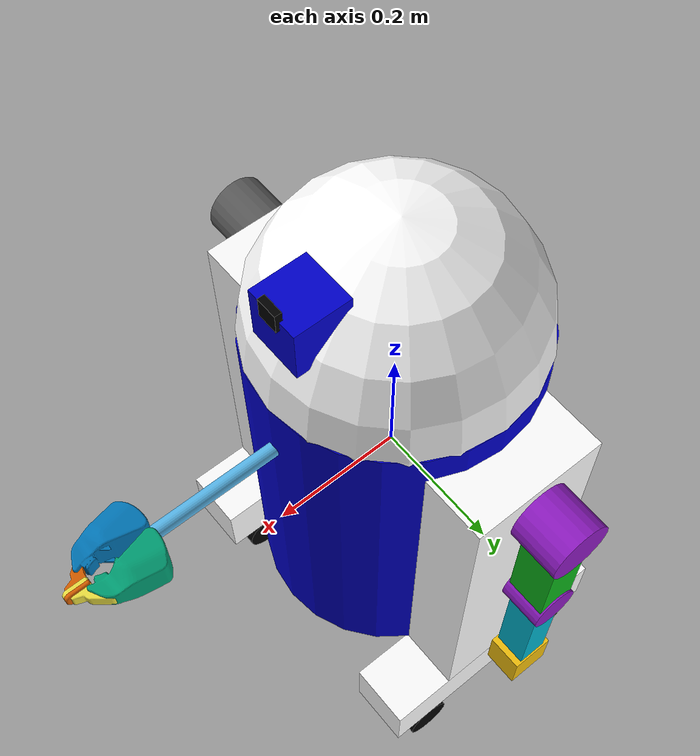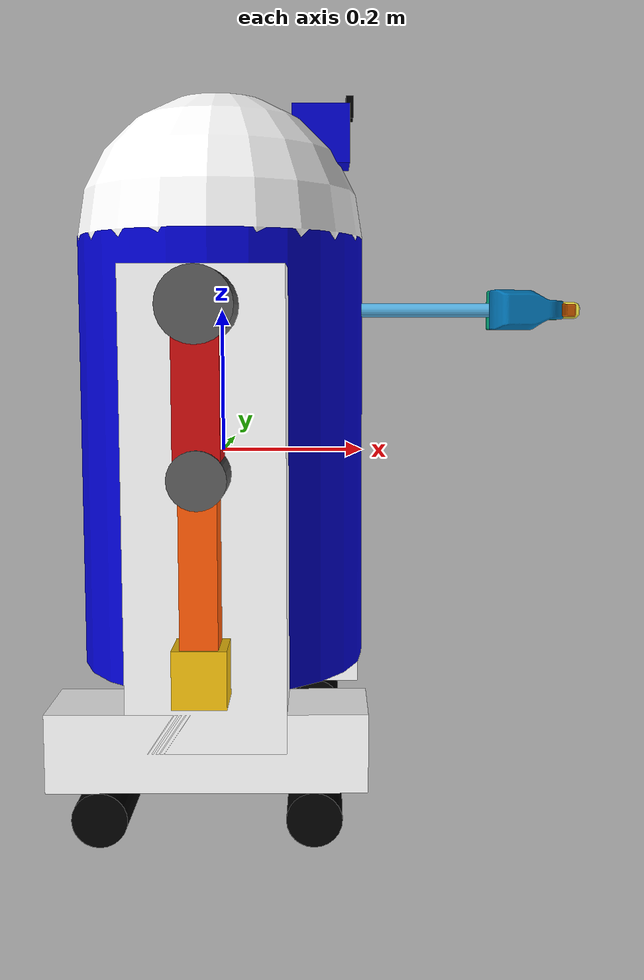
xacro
<?xml version="1.0"?>
<robot name="macroed" xmlns:xacro="http://ros.org/wiki/xacro">

  <xacro:property name="width" value="0.2" />
  <xacro:property name="leglen" value="0.6" />
  <xacro:property name="polelen" value="0.2" />
  <xacro:property name="bodylen" value="0.6" />
  <xacro:property name="baselen" value="0.4" />
  <xacro:property name="wheeldiam" value="0.07" />
  <!--
    박스의 관성 모멘트 계산

    x, y, z : 박스 크기
    mass    : 질량

    Ixx = 1/12 * m * (y² + z²)
    Iyy = 1/12 * m * (x² + z²)
    Izz = 1/12 * m * (x² + y²)
  -->
  <xacro:macro name="box_inertial"
               params="mass x y z origin_xyz:='0 0 0' origin_rpy:='0 0 0'">
    <inertial>
      <origin xyz="${origin_xyz}" rpy="${origin_rpy}"/>

      <mass value="${mass}"/>

      <inertia
        ixx="${mass * (y*y + z*z) / 12.0}"
        ixy="0.0"
        ixz="0.0"
        iyy="${mass * (x*x + z*z) / 12.0}"
        iyz="0.0"
        izz="${mass * (x*x + y*y) / 12.0}"/>
    </inertial>
  </xacro:macro>
  <material name="blue">
    <color rgba="0 0 0.8 1"/>
  </material>

  <material name="black">
    <color rgba="0 0 0 1"/>
  </material>

  <material name="white">
    <color rgba="1 1 1 1"/>
  </material>

  <material name="red">
    <color rgba="0.8 0.05 0.05 1"/>
  </material>

  <material name="green">
    <color rgba="0.05 0.7 0.1 1"/>
  </material>

  <material name="yellow">
    <color rgba="0.95 0.75 0.05 1"/>
  </material>

  <material name="orange">
    <color rgba="1.0 0.35 0.02 1"/>
  </material>

  <material name="purple">
    <color rgba="0.55 0.1 0.75 1"/>
  </material>

  <material name="cyan">
    <color rgba="0.0 0.7 0.8 1"/>
  </material>

  <material name="gray">
    <color rgba="0.35 0.35 0.35 1"/>
  </material>

  <xacro:macro name="default_inertial" params="mass">
    <inertial>
      <mass value="${mass}" />
      <inertia ixx="1e-3" ixy="0.0" ixz="0.0" iyy="1e-3" iyz="0.0" izz="1e-3" />
    </inertial>
  </xacro:macro>

  <link name="base_link">
    <visual>
      <geometry>
        <cylinder radius="${width}" length="${bodylen}"/>
      </geometry>
      <material name="blue"/>
    </visual>
    <collision>
      <geometry>
        <cylinder radius="${width}" length="${bodylen}"/>
      </geometry>
    </collision>
    <xacro:default_inertial mass="10"/>
  </link>

  <xacro:macro name="wheel" params="prefix suffix reflect">

    <link name="${prefix}_${suffix}_wheel">
      <visual>
        <origin xyz="0 0 0" rpy="${pi/2} 0 0" />
        <geometry>
          <cylinder radius="${wheeldiam/2}" length="0.1"/>
        </geometry>
        <material name="black"/>
      </visual>
      <collision>
        <origin xyz="0 0 0" rpy="${pi/2} 0 0" />
        <geometry>
          <cylinder radius="${wheeldiam/2}" length="0.1"/>
        </geometry>
      </collision>
      <xacro:default_inertial mass="1"/>
    </link>
    <joint name="${prefix}_${suffix}_wheel_joint" type="continuous">
      <axis xyz="0 1 0" rpy="0 0 0" />
      <parent link="${prefix}_base"/>
      <child link="${prefix}_${suffix}_wheel"/>
      <origin xyz="${baselen*reflect/3} 0 -${wheeldiam/2+.05}" rpy="0 0 0"/>
    </joint>

  </xacro:macro>

  <xacro:macro name="leg" params="prefix reflect">
    <link name="${prefix}_leg">
      <visual>
        <geometry>
          <box size="${leglen} 0.1 0.2"/>
        </geometry>
        <origin xyz="0 0 -${leglen/2}" rpy="0 ${pi/2} 0"/>
        <material name="white"/>
      </visual>
      <collision>
        <geometry>
          <box size="${leglen} 0.1 0.2"/>
        </geometry>
        <origin xyz="0 0 -${leglen/2}" rpy="0 ${pi/2} 0"/>
      </collision>
      <xacro:default_inertial mass="10"/>
    </link>

    <joint name="base_to_${prefix}_leg" type="fixed">
      <parent link="base_link"/>
      <child link="${prefix}_leg"/>
      <origin xyz="0 ${reflect*(width+.02)} 0.25" />
    </joint>

    <link name="${prefix}_base">
      <visual>
        <geometry>
          <box size="${baselen} 0.1 0.1"/>
        </geometry>
        <material name="white"/>
      </visual>
      <collision>
        <geometry>
          <box size="${baselen} 0.1 0.1"/>
        </geometry>
      </collision>
      <xacro:default_inertial mass="10"/>
    </link>

    <joint name="${prefix}_base_joint" type="fixed">
      <parent link="${prefix}_leg"/>
      <child link="${prefix}_base"/>
      <origin xyz="0 0 ${-leglen}" />
    </joint>
    <xacro:wheel prefix="${prefix}" suffix="front" reflect="1"/>
    <xacro:wheel prefix="${prefix}" suffix="back" reflect="-1"/>
  </xacro:macro>
  <xacro:leg prefix="right" reflect="-1" />
  <xacro:leg prefix="left" reflect="1" />

  <joint name="gripper_extension" type="prismatic">
    <parent link="base_link"/>
    <child link="gripper_pole"/>
    <limit effort="1000.0" lower="-${width*2-.02}" upper="0" velocity="0.5"/>
    <origin rpy="0 0 0" xyz="${width-.01} 0 0.2"/>
  </joint>

  <link name="gripper_pole">
    <visual>
      <geometry>
        <cylinder length="${polelen}" radius="0.01"/>
      </geometry>
      <origin xyz="${polelen/2} 0 0" rpy="0 ${pi/2} 0 "/>
    </visual>
    <collision>
      <geometry>
        <cylinder length="${polelen}" radius="0.01"/>
      </geometry>
      <origin xyz="${polelen/2} 0 0" rpy="0 ${pi/2} 0 "/>
    </collision>
    <xacro:default_inertial mass="0.05"/>
  </link>

  <xacro:macro name="gripper" params="prefix reflect">
    <joint name="${prefix}_gripper_joint" type="revolute">
      <axis xyz="0 0 ${reflect}"/>
      <limit effort="1000.0" lower="0.0" upper="0.548" velocity="0.5"/>
      <origin rpy="0 0 0" xyz="${polelen} ${reflect*0.01} 0"/>
      <parent link="gripper_pole"/>
      <child link="${prefix}_gripper"/>
    </joint>
    <link name="${prefix}_gripper">
      <visual>
        <origin rpy="${(reflect-1)/2*pi} 0 0" xyz="0 0 0"/>
        <geometry>
          <mesh filename="package://tf2_basic/meshes/l_finger.dae"/>
        </geometry>
      </visual>
      <collision>
        <geometry>
          <mesh filename="package://tf2_basic/meshes/l_finger.dae"/>
        </geometry>
        <origin rpy="${(reflect-1)/2*pi} 0 0" xyz="0 0 0"/>
      </collision>
      <xacro:default_inertial mass="0.05"/>
    </link>

    <joint name="${prefix}_tip_joint" type="fixed">
      <parent link="${prefix}_gripper"/>
      <child link="${prefix}_tip"/>
    </joint>
    <link name="${prefix}_tip">
      <visual>
        <origin rpy="${(reflect-1)/2*pi} 0 0" xyz="0.09137 0.00495 0"/>
        <geometry>
          <mesh filename="package://tf2_basic/meshes/l_finger_tip.dae"/>
        </geometry>
      </visual>
      <collision>
        <geometry>
          <mesh filename="package://tf2_basic/meshes/l_finger_tip.dae"/>
        </geometry>
        <origin rpy="${(reflect-1)/2*pi} 0 0" xyz="0.09137 0.00495 0"/>
      </collision>
      <xacro:default_inertial mass="0.05"/>
    </link>
  </xacro:macro>

  <xacro:gripper prefix="left" reflect="1" />
  <xacro:gripper prefix="right" reflect="-1" />

  <link name="head">
    <visual>
      <geometry>
        <sphere radius="${width}"/>
      </geometry>
      <material name="white"/>
    </visual>
    <collision>
      <geometry>
        <sphere radius="${width}"/>
      </geometry>
    </collision>
    <xacro:default_inertial mass="2"/>
  </link>

  <joint name="head_swivel" type="continuous">
    <parent link="base_link"/>
    <child link="head"/>
    <axis xyz="0 0 1"/>
    <origin xyz="0 0 ${bodylen/2}"/>
  </joint>

  <link name="box">
    <visual>
      <geometry>
        <box size="0.08 0.08 0.08"/>
      </geometry>
      <material name="blue"/>
      <origin xyz="-0.04 0 0"/>
    </visual>
    <collision>
      <geometry>
        <box size="0.08 0.08 0.08"/>
      </geometry>
    </collision>
    <xacro:default_inertial mass="1"/>
  </link>

  <joint name="tobox" type="fixed">
    <parent link="head"/>
    <child link="box"/>
    <origin xyz="${.707*width+0.04} 0 ${.707*width}"/>
  </joint>

  <link name="camera_link">
    <visual>
      <geometry>
        <box size="0.01 0.03 0.03"/>
      </geometry>
      <material name="black"/>
    </visual>
  </link>

  <joint name="camera_joint" type="fixed">
    <parent link="box"/>
    <child link="camera_link"/>
    <origin xyz="0 0 0.04" rpy="0 0 0"/>
  </joint>

  <gazebo reference="camera_link">
    <material>Gazebo/Red</material>
  </gazebo>

  <joint name="camera_optical_joint" type="fixed">
    <origin xyz="0 0 0" rpy="${-pi/2} 0 ${-pi/2}"/>
    <parent link="camera_link"/>
    <child link= "camera_link_optical"/>
  </joint>

  <link name="camera_link_optical"/>
  <!-- 팔 치수 및 질량 -->
  <xacro:property name="upper_arm_len" value="0.2"/>
  <xacro:property name="lower_arm_len" value="0.2"/>
  <xacro:property name="upper_arm_width" value="0.055"/>
  <xacro:property name="upper_arm_depth" value="0.060"/>
  <xacro:property name="lower_arm_width" value="0.045"/>
  <xacro:property name="lower_arm_depth" value="0.050"/>
  <xacro:property name="upper_arm_mass" value="0.45"/>
  <xacro:property name="lower_arm_mass" value="0.35"/>
  <xacro:property name="shoulder_mass" value="0.10"/>
  <xacro:property name="elbow_mass" value="0.08"/>
  <xacro:property name="hand_mass" value="0.15"/>
  <xacro:property name="shoulder_radius" value="0.045"/>
  <xacro:property name="shoulder_length" value="0.075"/>
  <xacro:property name="elbow_radius" value="0.035"/>
  <xacro:property name="elbow_length" value="0.065"/>

  <!-- 실린더 중심축이 로컬 z축일 때의 관성 -->
  <xacro:macro name="cylinder_inertial" params="mass radius length origin_xyz:='0 0 0' origin_rpy:='0 0 0'">
    <inertial>
      <origin xyz="${origin_xyz}" rpy="${origin_rpy}"/>
      <mass value="${mass}"/>
      <inertia
        ixx="${mass * (3.0*radius*radius + length*length) / 12.0}"
        ixy="0.0"
        ixz="0.0"
        iyy="${mass * (3.0*radius*radius + length*length) / 12.0}"
        iyz="0.0"
        izz="${mass * radius*radius / 2.0}"/>
    </inertial>
  </xacro:macro>

  <!-- side: right 또는 left, reflect: right=-1 / left=1 -->
  <xacro:macro name="arm" params="side reflect upper_material lower_material joint_material hand_material">

    <link name="${side}_arm_shoulder_link">
      <visual>
        <origin xyz="0 0 0" rpy="${pi/2} 0 0"/>
        <geometry>
          <cylinder radius="${shoulder_radius}" length="${shoulder_length}"/>
        </geometry>
        <material name="${joint_material}"/>
      </visual>
      <collision>
        <origin xyz="0 0 0" rpy="${pi/2} 0 0"/>
        <geometry>
          <cylinder radius="${shoulder_radius}" length="${shoulder_length}"/>
        </geometry>
      </collision>
      <!-- 실린더가 y축 방향이므로 inertial frame도 동일하게 회전 -->
      <xacro:cylinder_inertial
        mass="${shoulder_mass}"
        radius="${shoulder_radius}"
        length="${shoulder_length}"
        origin_rpy="${pi/2} 0 0"/>
    </link>

    <joint name="${side}_leg_to_arm_shoulder_joint" type="fixed">
      <parent link="${side}_leg"/>
      <child link="${side}_arm_shoulder_link"/>
      <origin xyz="0 ${reflect*0.09} -0.05" rpy="0 0 0"/>
    </joint>

    <link name="${side}_arm_upper_link">
      <visual>
        <origin xyz="0 0 -${upper_arm_len/2.0}" rpy="0 0 0"/>
        <geometry>
          <box size="${upper_arm_width} ${upper_arm_depth} ${upper_arm_len}"/>
        </geometry>
        <material name="${upper_material}"/>
      </visual>
      <collision>
        <origin xyz="0 0 -${upper_arm_len/2.0}" rpy="0 0 0"/>
        <geometry>
          <box size="${upper_arm_width} ${upper_arm_depth} ${upper_arm_len}"/>
        </geometry>
      </collision>
      <xacro:box_inertial
        mass="${upper_arm_mass}"
        x="${upper_arm_width}"
        y="${upper_arm_depth}"
        z="${upper_arm_len}"
        origin_xyz="0 0 -${upper_arm_len/2.0}"/>
    </link>

    <joint name="${side}_arm_shoulder_revolute_joint" type="revolute">
      <parent link="${side}_arm_shoulder_link"/>
      <child link="${side}_arm_upper_link"/>
      <origin xyz="0 0 0" rpy="0 0 0"/>
      <axis xyz="0 1 0"/>
      <limit lower="-1.5708" upper="1.5708" effort="100.0" velocity="1.0"/>
      <dynamics damping="0.2" friction="0.1"/>
    </joint>

    <link name="${side}_arm_elbow_link">
      <visual>
        <origin xyz="0 0 0" rpy="${pi/2} 0 0"/>
        <geometry>
          <cylinder radius="${elbow_radius}" length="${elbow_length}"/>
        </geometry>
        <material name="${joint_material}"/>
      </visual>
      <collision>
        <origin xyz="0 0 0" rpy="${pi/2} 0 0"/>
        <geometry>
          <cylinder radius="${elbow_radius}" length="${elbow_length}"/>
        </geometry>
      </collision>
      <xacro:cylinder_inertial
        mass="${elbow_mass}"
        radius="${elbow_radius}"
        length="${elbow_length}"
        origin_rpy="${pi/2} 0 0"/>
    </link>

    <joint name="${side}_arm_upper_to_elbow_joint" type="fixed">
      <parent link="${side}_arm_upper_link"/>
      <child link="${side}_arm_elbow_link"/>
      <origin xyz="0 0 -${upper_arm_len}" rpy="0 0 0"/>
    </joint>

    <link name="${side}_arm_lower_link">
      <visual>
        <origin xyz="0 0 -${lower_arm_len/2.0}" rpy="0 0 0"/>
        <geometry>
          <box size="${lower_arm_width} ${lower_arm_depth} ${lower_arm_len}"/>
        </geometry>
        <material name="${lower_material}"/>
      </visual>
      <collision>
        <origin xyz="0 0 -${lower_arm_len/2.0}" rpy="0 0 0"/>
        <geometry>
          <box size="${lower_arm_width} ${lower_arm_depth} ${lower_arm_len}"/>
        </geometry>
      </collision>
      <xacro:box_inertial
        mass="${lower_arm_mass}"
        x="${lower_arm_width}"
        y="${lower_arm_depth}"
        z="${lower_arm_len}"
        origin_xyz="0 0 -${lower_arm_len/2.0}"/>
    </link>

    <!-- URDF에는 elbow라는 joint type이 없으므로 revolute 사용 -->
    <joint name="${side}_arm_elbow_revolute_joint" type="revolute">
      <parent link="${side}_arm_elbow_link"/>
      <child link="${side}_arm_lower_link"/>
      <origin xyz="0 0 0" rpy="0 0 0"/>
      <axis xyz="0 1 0"/>
      <limit lower="0.0" upper="2.61799" effort="80.0" velocity="1.2"/>
      <dynamics damping="0.15" friction="0.08"/>
    </joint>

    <link name="${side}_arm_hand_link">
      <visual>
        <origin xyz="0 0 -0.035" rpy="0 0 0"/>
        <geometry>
          <box size="0.065 0.055 0.070"/>
        </geometry>
        <material name="${hand_material}"/>
      </visual>
      <collision>
        <origin xyz="0 0 -0.035" rpy="0 0 0"/>
        <geometry>
          <box size="0.065 0.055 0.070"/>
        </geometry>
      </collision>
      <xacro:box_inertial
        mass="${hand_mass}"
        x="0.065"
        y="0.055"
        z="0.070"
        origin_xyz="0 0 -0.035"/>
    </link>

    <joint name="${side}_arm_wrist_fixed_joint" type="fixed">
      <parent link="${side}_arm_lower_link"/>
      <child link="${side}_arm_hand_link"/>
      <origin xyz="0 0 -${lower_arm_len}" rpy="0 0 0"/>
    </joint>
  </xacro:macro>

  <!-- leg 링크는 위에서 한 번만 생성되어 있음 -->
  <xacro:arm
    side="right"
    reflect="-1"
    upper_material="red"
    lower_material="orange"
    joint_material="gray"
    hand_material="yellow"/>

  <xacro:arm
    side="left"
    reflect="1"
    upper_material="green"
    lower_material="cyan"
    joint_material="purple"
    hand_material="yellow"/>

</robot>
